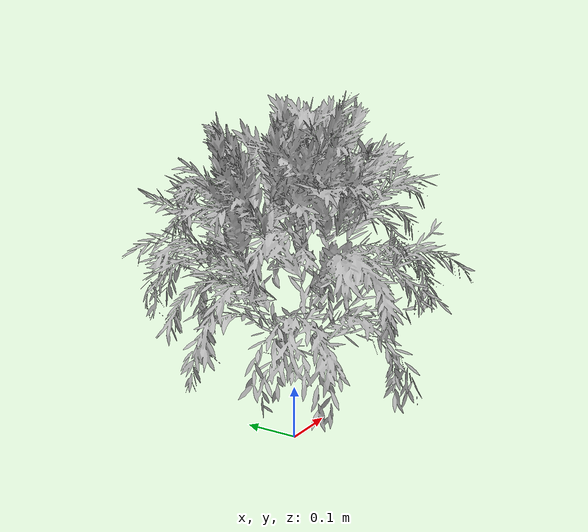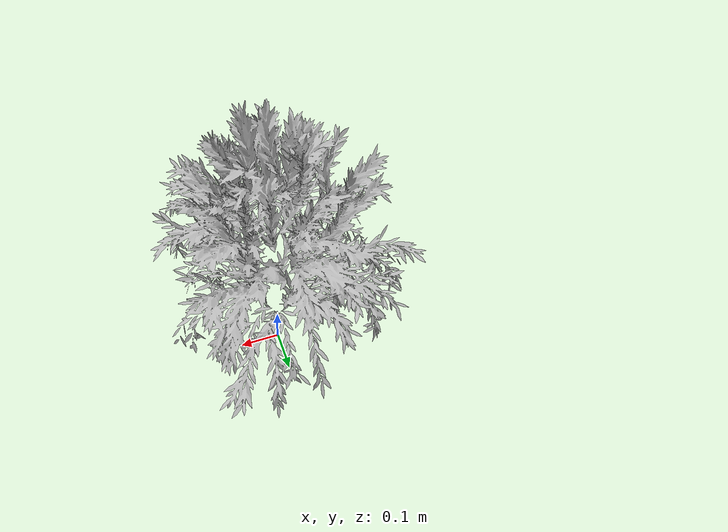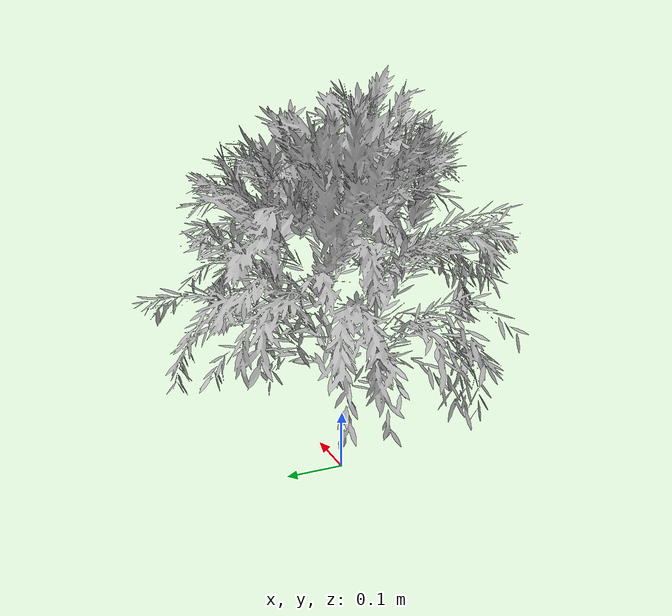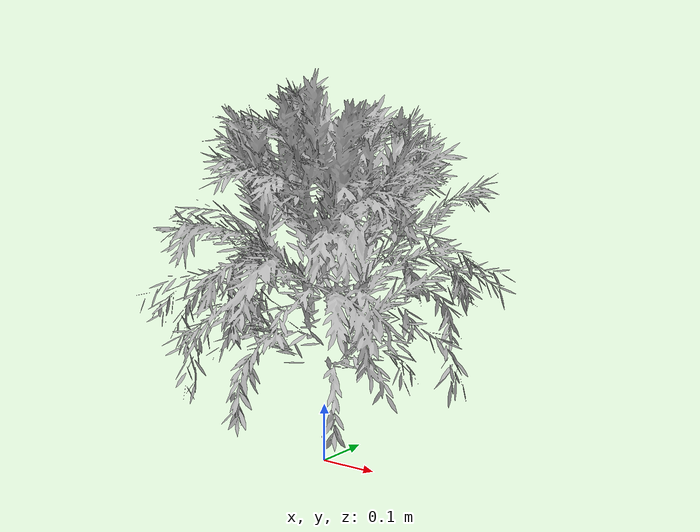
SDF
<?xml version="1.0" ?>
<sdf version="1.0">
  <model name="birch_tree_2">

    <static>true</static>
    <link name="link">

      <collision name="collision">
        <geometry>
          <mesh>
            <uri>model://birch_tree_2/meshes/birch_tree_2.dae</uri>
            <scale>0.1 0.1 0.1</scale>
          </mesh>
        </geometry>
      </collision>

      <visual name="visual">
        <geometry>
          <mesh>
            <uri>model://birch_tree_2/meshes/birch_tree_2.dae</uri>
            <scale>0.1 0.1 0.1</scale>
          </mesh>
        </geometry>
      </visual>

    </link>
  </model>
</sdf>
